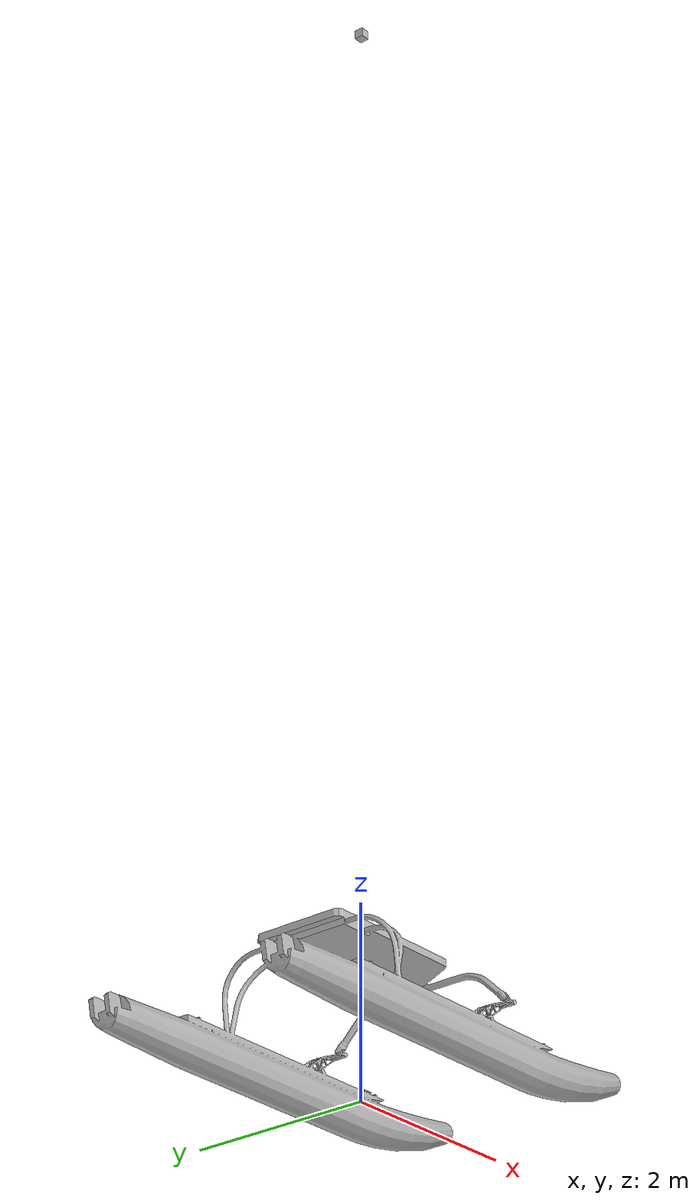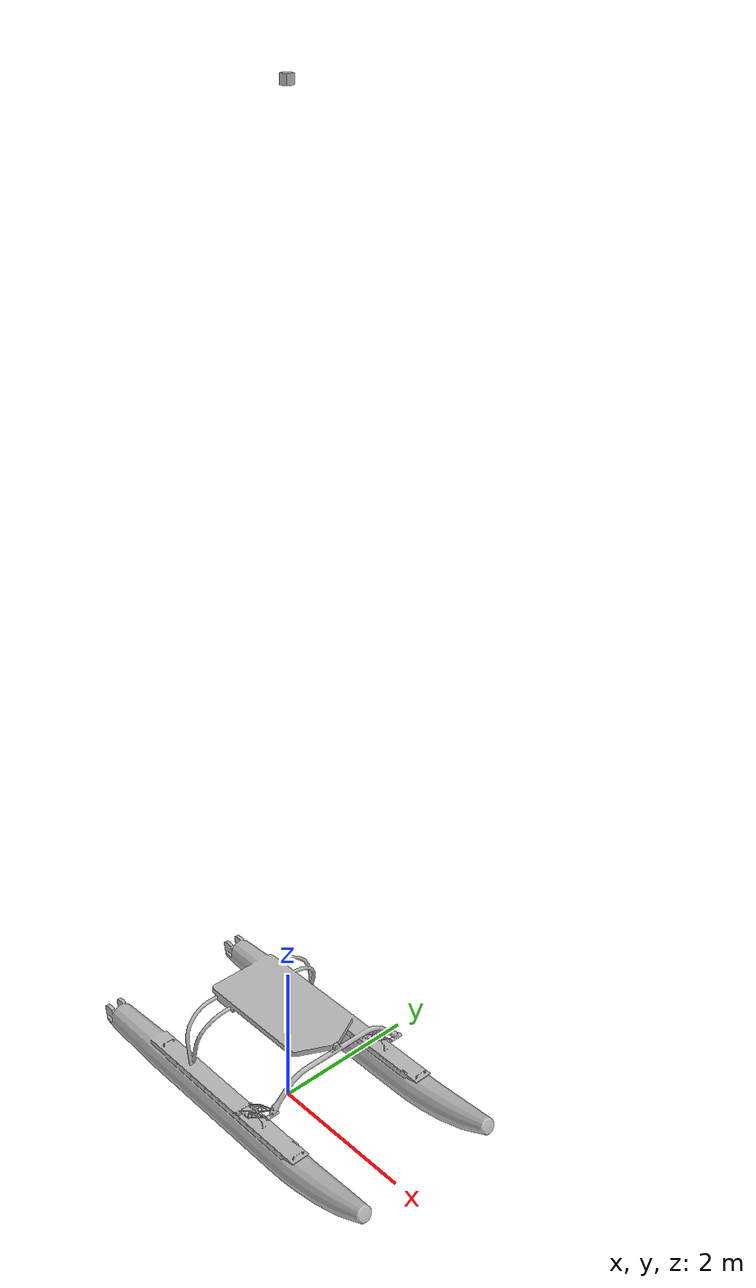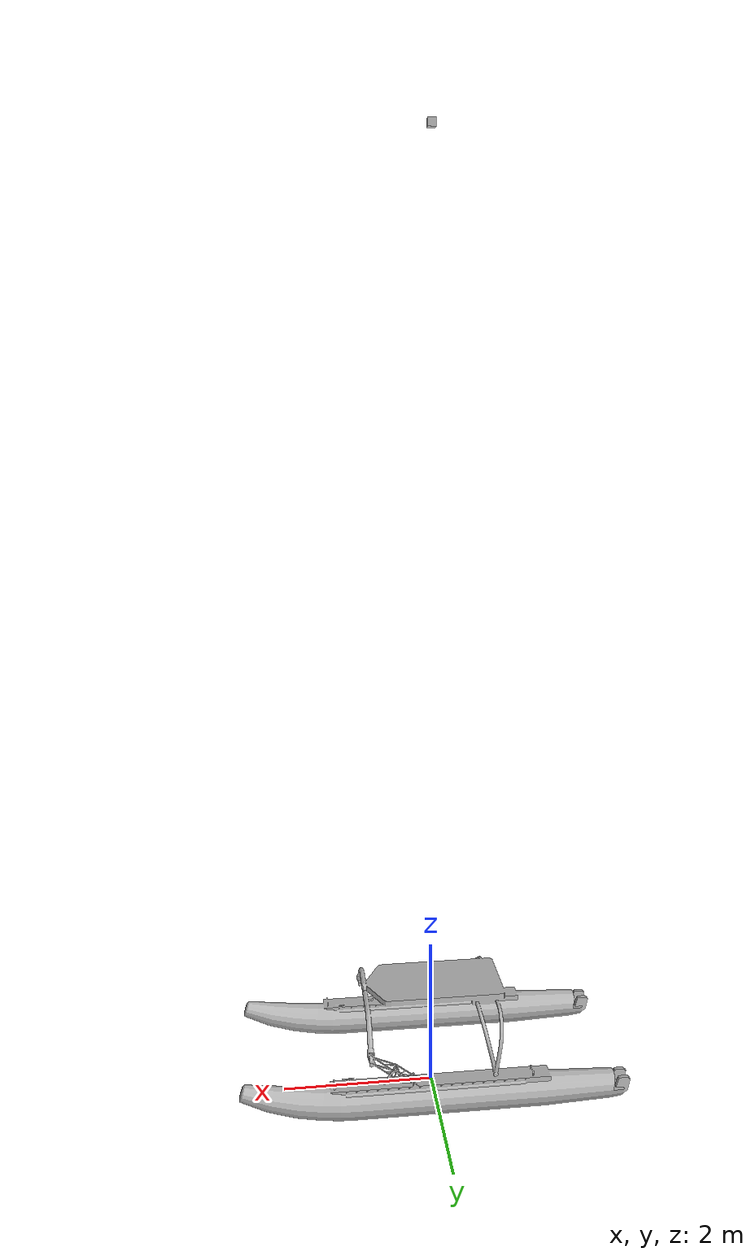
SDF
<?xml version='1.0'?>
<sdf version='1.6'>
  <model name='wam-v'>
    <pose>0 0 0.2 0 0 0</pose>
    <static>false</static>

    <!-- Hydrodynamics Plugin -->
    <plugin name="hydrodynamics" filename="libHydrodynamicsPlugin.so">
      <wave_model>ocean</wave_model>
      <damping_on>true</damping_on>
      <viscous_drag_on>true</viscous_drag_on>
      <pressure_drag_on>true</pressure_drag_on>
      <markers>
        <update_rate>30</update_rate>
        <water_patch>false</water_patch>
        <waterline>false</waterline>
        <underwater_surface>false</underwater_surface>
      </markers>
    </plugin>
    <!-- Add IMU sensor -->
    <link name="imu_link">
      <sensor name="imu_sensor" type="imu">
        <always_on>true</always_on>
        <update_rate>100</update_rate>
        <visualize>true</visualize>
        <plugin name="imu_plugin" filename="libgazebo_ros_imu_sensor.so">
          <topicName>wamv/imu</topicName>
          <bodyName>imu_link</bodyName>
          <updateRateHZ>100.0</updateRateHZ>
          <gaussianNoise>0.01</gaussianNoise>
          <xyzOffset>0 0 0</xyzOffset>
          <rpyOffset>0 0 0</rpyOffset>
          <frameName>imu_link</frameName>
        </plugin>
      </sensor>
    </link>

    <!-- Add odometry plugin -->
    <plugin name="p3d_plugin" filename="libgazebo_ros_p3d.so">
      <alwaysOn>true</alwaysOn>
      <updateRate>50.0</updateRate>
      <bodyName>base_link</bodyName>
      <topicName>wamv/odom</topicName>
      <gaussianNoise>0.01</gaussianNoise>
      <frameName>world</frameName>
      <xyzOffsets>0 0 0</xyzOffsets>
      <rpyOffsets>0 0 0</rpyOffsets>
    </plugin>

    <!-- Add planar move plugin for simple movement -->
    <plugin name="planar_move" filename="libgazebo_ros_planar_move.so">
      <commandTopic>cmd_vel</commandTopic>
      <odometryTopic>odom</odometryTopic>
      <odometryFrame>odom</odometryFrame>
      <robotBaseFrame>base_link</robotBaseFrame>
      <odometryRate>20.0</odometryRate>
    </plugin>

    <link name="base_link">
      <velocity_decay>
        <linear>0.05</linear>
        <angular>0.05</angular>
      </velocity_decay>

      <visual name="base_visual">
        <geometry>
          <mesh>
            <uri>model://wam-v/meshes/WAM-V-Base.dae</uri>
          </mesh>
        </geometry>
      </visual>

      <collision name="base_collision">
        <geometry>
          <mesh>
            <uri>model://wam-v/meshes/wam-v-base_collision_406.stl</uri>
          </mesh>
        </geometry>
      </collision>

      <inertial>
        <pose>0 0 0 0 0 0</pose>
        <mass>180</mass>
        <inertia>
          <ixx>120</ixx>
          <ixy>0</ixy>
          <iyy>393</iyy>
          <iyz>0</iyz>
          <izz>446</izz>
        </inertia>
      </inertial>
    </link>
  <link name="top_camera_link">
  <pose>0 0 12.0 0 1.5708 0</pose>
  <visual name="camera_visual">
    <geometry>
      <box>
        <size>0.1 0.1 0.1</size>
      </box>
    </geometry>
  </visual>
  <sensor name="top_camera_sensor" type="camera">
    <update_rate>30</update_rate>
    <camera>
      <horizontal_fov>1.3962634</horizontal_fov>
      <image>
        <width>800</width>
        <height>800</height>
        <format>R8G8B8</format>
      </image>
      <clip>
        <near>0.02</near>
        <far>300</far>
      </clip>
    </camera>
    <plugin name="camera_controller" filename="libgazebo_ros_camera.so">
      <alwaysOn>true</alwaysOn>
      <updateRate>30.0</updateRate>
      <cameraName>wamv/top_camera</cameraName>
      <imageTopicName>image_raw</imageTopicName>
      <cameraInfoTopicName>camera_info</cameraInfoTopicName>
      <frameName>top_camera_link</frameName>
      <hackBaseline>0.07</hackBaseline>
      <distortionK1>0.0</distortionK1>
      <distortionK2>0.0</distortionK2>
      <distortionK3>0.0</distortionK3>
      <distortionT1>0.0</distortionT1>
      <distortionT2>0.0</distortionT2>
    </plugin>
   </sensor>
  </link>

  <joint name="camera_joint" type="fixed">
  <parent>base_link</parent>
  <child>top_camera_link</child>
  </joint>
  </model>
</sdf>
